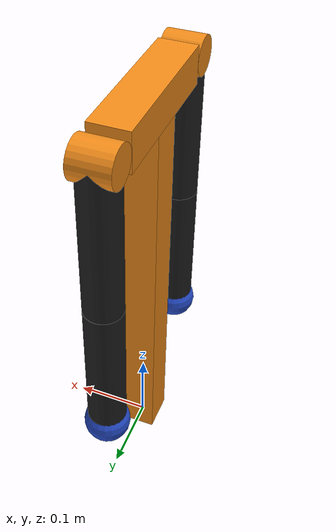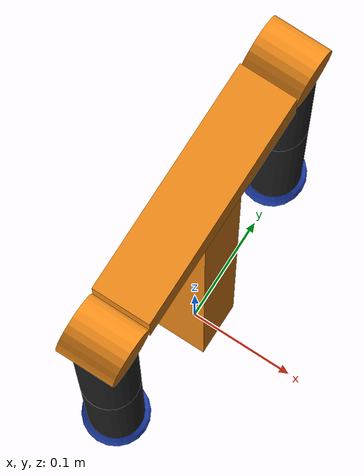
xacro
<?xml version="1.0"?>
<robot name="humanoid" xmlns:xacro="http://www.ros.org/wiki/xacro">
  <xacro:property name="PI" value="3.1415926535897931"/>
  <xacro:property name="mass" value="1" /> <!-- arbitrary value for mass -->
  <xacro:property name="width" value="0.1" /> <!-- Square dimensions (widthxwidth) of beams -->
  <xacro:property name="body_width" value="0.05" /> <!-- Square dimensions (width x width) of body_link1 -->
  <xacro:property name="body_height1" value="0.5" /> <!-- body_link1 -->
  <xacro:property name="height1" value="2" /> <!-- Link 1 -->
  <xacro:property name="height2" value="1" /> <!-- Link 2 -->
  <xacro:property name="axel_offset" value="0.05" /> <!-- Space btw top of beam and the each joint -->

  <xacro:include filename="$(find humanoid-robot)/urdf/humanoid.gazebo.xacro" />
  <xacro:include filename="$(find humanoid-robot)/urdf/materials.xacro" />

  <link name="world"/>

  <joint name="fixed" type="fixed">
    <parent link="world"/>
    <child link="body_link1"/>
  </joint>

  <!-- Base Link -->
  <link name="body_link1">
    <collision>
      <origin xyz="0 0 ${body_height1/2}" rpy="0 0 0"/>
      <geometry>
	<box size="${body_width} ${body_width} ${body_height1}"/>
      </geometry>
    </collision>

    <visual>
      <origin xyz="0 0 ${body_height1/2}" rpy="0 0 0"/>
      <geometry>
	<box size="${body_width} ${body_width} ${body_height1}"/>
      </geometry>
      <material name="orange"/>
    </visual>

    <inertial>
      <origin xyz="0 0 ${body_height1/2}" rpy="0 0 0"/>
      <mass value="${mass}"/>
      <inertia
	  ixx="${mass / 12.0 * (body_width*body_width + body_height1*body_height1)}" ixy="0.0" ixz="0.0"
	  iyy="${mass / 12.0 * (body_height1*body_height1 + body_width*body_width)}" iyz="0.0"
	  izz="${mass / 12.0 * (body_width*body_width + body_width*body_width)}"/>
    </inertial>
  </link>
  <joint name="body_joint1" type="fixed">
    <parent link="body_link1"/>
    <child link="body_link2"/>
    <origin xyz="0 0 ${body_height1 + 0.05/2.0}" rpy="0 0 0"/>
    <axis xyz="0 0 0"/>
    <dynamics damping="0.7"/>
  </joint>

  <link name="body_link2">
    <collision>
      <origin xyz="0 0 0" rpy="0 0 0"/>
      <geometry>
	<box size="0.05 0.2 0.05"/>
      </geometry>
    </collision>

    <visual>
      <origin xyz="0 0 0" rpy="0 0 0"/>
      <geometry>
	<box size="0.05 0.2 0.05"/>
      </geometry>
      <material name="orange"/>
    </visual>

    <inertial>
      <origin xyz="0 0 0" rpy="0 0 0"/>
      <mass value="${mass}"/>
      <inertia
	  ixx="${mass / 12.0 * (body_width*body_width + body_height1*body_height1)}" ixy="0.0" ixz="0.0"
	  iyy="${mass / 12.0 * (body_height1*body_height1 + body_width*body_width)}" iyz="0.0"
	  izz="${mass / 12.0 * (body_width*body_width + body_width*body_width)}"/>
    </inertial>
  </link>

  <joint name="left_shoulder_joint1" type="revolute">
    <parent link="body_link2"/>
    <child link="left_shoulder"/>
    <origin xyz="0 ${-0.1 -0.025} 0" rpy="0 ${3.141592/2} 0"/>
	<limit effort="300" velocity="3" lower="-3.14" upper="3.14"/>
    <axis xyz="0 1 0"/>
    <dynamics damping="0.7"/>
  </joint>

  <link name="left_shoulder">
    <visual>
      <origin xyz="0 0 0" rpy="0 0 0"/>
      <geometry>
        <cylinder radius="0.025" length="0.05"/>
      </geometry>
      <material name="orange"/>
    </visual>

    <inertial>
      <origin xyz="0 0 0" rpy="0 0 0"/>
      <mass value="${mass}"/>
      <inertia
	  ixx="${mass / 12.0 * (body_width*body_width + body_height1*body_height1)}" ixy="0.0" ixz="0.0"
	  iyy="${mass / 12.0 * (body_height1*body_height1 + body_width*body_width)}" iyz="0.0"
	  izz="${mass / 12.0 * (body_width*body_width + body_width*body_width)}"/>
    </inertial>
  </link>

  <joint name="left_shoulder_joint2" type="revolute">
    <parent link="left_shoulder"/>
    <child link="left_arm"/>
    <origin xyz="0 0 0" rpy="0 ${3.141592/2} 0"/>
	<limit effort="300" velocity="3" lower="-3.14" upper="3.14"/>
    <axis xyz="1 0 0"/>
    <dynamics damping="0.7"/>
  </joint>

  <link name="left_arm">
     <collision>
      <origin xyz="0 0 0.1" rpy="0 0 0"/>
      <geometry>
	    <cylinder radius="0.025" length="0.2"/>
      </geometry>
    </collision>

    <visual>
      <origin xyz="0 0 0.1" rpy="0 0 0"/>
      <geometry>
	    <cylinder radius="0.025" length="0.2"/>
      </geometry>
      <material name="black"/>
    </visual>

    <inertial>
      <origin xyz="0 0 0.1" rpy="0 0 0"/>
      <mass value="${mass}"/>
      <inertia
	  ixx="${mass / 12.0 * (body_width*body_width + body_height1*body_height1)}" ixy="0.0" ixz="0.0"
	  iyy="${mass / 12.0 * (body_height1*body_height1 + body_width*body_width)}" iyz="0.0"
	  izz="${mass / 12.0 * (body_width*body_width + body_width*body_width)}"/>
    </inertial>
  </link>

  <joint name="left_elbow_joint" type="revolute">
    <parent link="left_arm"/>
    <child link="left_forearm"/>
    <origin xyz="0 0 0.2" rpy="0 0  0"/>
	<limit effort="300" velocity="3" lower="-3.14" upper="0"/>
    <axis xyz="0 1 0"/>
    <dynamics damping="0.7"/>
  </joint>

  <link name="left_forearm">
     <collision>
      <origin xyz="0 0 0.1" rpy="0 0 0"/>
      <geometry>
	    <cylinder radius="0.025" length="0.2"/>
      </geometry>
    </collision>
    <visual>
      <origin xyz="0 0 0.1" rpy="0 0 0"/>
      <geometry>
	    <cylinder radius="0.025" length="0.2"/>
      </geometry>
      <material name="black"/>
    </visual>
    <inertial>
      <origin xyz="0 0 0.1" rpy="0 0 0"/>
      <mass value="${mass}"/>
      <inertia
	  ixx="${mass / 12.0 * (body_width*body_width + body_height1*body_height1)}" ixy="0.0" ixz="0.0"
	  iyy="${mass / 12.0 * (body_height1*body_height1 + body_width*body_width)}" iyz="0.0"
	  izz="${mass / 12.0 * (body_width*body_width + body_width*body_width)}"/>
    </inertial>
  </link>

  <joint name="left_hand_joint" type="revolute">
    <parent link="left_forearm"/>
    <child link="left_hand"/>
    <origin xyz="0 0 0.2" rpy="0 0  0"/>
  	<limit effort="300" velocity="3" lower="-3.14" upper="3.14"/>
    <axis xyz="0 0 1"/>
    <dynamics damping="0.7"/>
  </joint>

  <link name="left_hand">
     <collision>
      <origin xyz="0 0 0" rpy="0 0 0"/>
      <geometry>
    	  <sphere radius="0.03" />
      </geometry>
    </collision>
    <visual>
      <origin xyz="0 0 0" rpy="0 0 0"/>
      <geometry>
          <sphere radius="0.03" />
      </geometry>
      <material name="blue"/>
    </visual>
    <inertial>
      <origin xyz="0 0 0" rpy="0 0 0"/>
      <mass value="${mass}"/>
      <inertia
	  ixx="${mass / 12.0 * (body_width*body_width + body_height1*body_height1)}" ixy="0.0" ixz="0.0"
	  iyy="${mass / 12.0 * (body_height1*body_height1 + body_width*body_width)}" iyz="0.0"
	  izz="${mass / 12.0 * (body_width*body_width + body_width*body_width)}"/>
    </inertial>
  </link>

  <!--- Right Arm -->
  <joint name="right_shoulder_joint1" type="revolute">
    <parent link="body_link2"/>
    <child link="right_shoulder"/>
    <origin xyz="0 ${0.1 + 0.025} 0" rpy="0 ${3.141592/2} 0"/>
	<limit effort="300" velocity="3" lower="-3.14" upper="3.14"/>
    <axis xyz="0 1 0"/>
    <dynamics damping="0.7"/>
  </joint>

  <link name="right_shoulder">
    <visual>
      <origin xyz="0 0 0" rpy="0 0 0"/>
      <geometry>
        <cylinder radius="0.025" length="0.05"/>
      </geometry>
      <material name="orange"/>
    </visual>

    <inertial>
      <origin xyz="0 0 0" rpy="0 0 0"/>
      <mass value="${mass}"/>
      <inertia
	  ixx="${mass / 12.0 * (body_width*body_width + body_height1*body_height1)}" ixy="0.0" ixz="0.0"
	  iyy="${mass / 12.0 * (body_height1*body_height1 + body_width*body_width)}" iyz="0.0"
	  izz="${mass / 12.0 * (body_width*body_width + body_width*body_width)}"/>
    </inertial>
  </link>

  <joint name="right_shoulder_joint2" type="revolute">
    <parent link="right_shoulder"/>
    <child link="right_arm"/>
    <origin xyz="0 0 0" rpy="0 ${3.141592/2} 0"/>
	<limit effort="300" velocity="3" lower="-3.14" upper="3.14"/>
    <axis xyz="1 0 0"/>
    <dynamics damping="0.7"/>
  </joint>

  <link name="right_arm">
     <collision>
      <origin xyz="0 0 0.1" rpy="0 0 0"/>
      <geometry>
	    <cylinder radius="0.025" length="0.2"/>
      </geometry>
    </collision>

    <visual>
      <origin xyz="0 0 0.1" rpy="0 0 0"/>
      <geometry>
	    <cylinder radius="0.025" length="0.2"/>
      </geometry>
      <material name="black"/>
    </visual>

    <inertial>
      <origin xyz="0 0 ${body_height1/2}" rpy="0 0 0"/>
      <mass value="${mass}"/>
      <inertia
	  ixx="${mass / 12.0 * (body_width*body_width + body_height1*body_height1)}" ixy="0.0" ixz="0.0"
	  iyy="${mass / 12.0 * (body_height1*body_height1 + body_width*body_width)}" iyz="0.0"
	  izz="${mass / 12.0 * (body_width*body_width + body_width*body_width)}"/>
    </inertial>
  </link>

  <joint name="right_elbow_joint" type="revolute">
    <parent link="right_arm"/>
    <child link="right_forearm"/>
    <origin xyz="0 0 0.2" rpy="0 0  0"/>
	<limit effort="300" velocity="3" lower="-3.14" upper="0"/>
    <axis xyz="0 1 0"/>
    <dynamics damping="0.7"/>
  </joint>

  <link name="right_forearm">
     <collision>
      <origin xyz="0 0 0.1" rpy="0 0 0"/>
      <geometry>
	    <cylinder radius="0.025" length="0.2"/>
      </geometry>
    </collision>
    <visual>
      <origin xyz="0 0 0.1" rpy="0 0 0"/>
      <geometry>
	    <cylinder radius="0.025" length="0.2"/>
      </geometry>
      <material name="black"/>
    </visual>
    <inertial>
      <origin xyz="0 0 0.1" rpy="0 0 0"/>
      <mass value="${mass}"/>
      <inertia
	  ixx="${mass / 12.0 * (body_width*body_width + body_height1*body_height1)}" ixy="0.0" ixz="0.0"
	  iyy="${mass / 12.0 * (body_height1*body_height1 + body_width*body_width)}" iyz="0.0"
	  izz="${mass / 12.0 * (body_width*body_width + body_width*body_width)}"/>
    </inertial>
  </link>

  <joint name="right_hand_joint" type="revolute">
    <parent link="right_forearm"/>
    <child link="right_hand"/>
    <origin xyz="0 0 0.2" rpy="0 0  0"/>
  	<limit effort="300" velocity="3" lower="-3.14" upper="3.14"/>
    <axis xyz="0 0 1"/>
    <dynamics damping="0.7"/>
  </joint>

  <link name="right_hand">
     <collision>
      <origin xyz="0 0 0" rpy="0 0 0"/>
      <geometry>
    	  <sphere radius="0.03" />
      </geometry>
    </collision>
    <visual>
      <origin xyz="0 0 0" rpy="0 0 0"/>
      <geometry>
          <sphere radius="0.03" />
      </geometry>
      <material name="blue"/>
    </visual>
    <inertial>
      <origin xyz="0 0 0" rpy="0 0 0"/>
      <mass value="${mass}"/>
      <inertia
	  ixx="${mass / 12.0 * (body_width*body_width + body_height1*body_height1)}" ixy="0.0" ixz="0.0"
	  iyy="${mass / 12.0 * (body_height1*body_height1 + body_width*body_width)}" iyz="0.0"
	  izz="${mass / 12.0 * (body_width*body_width + body_width*body_width)}"/>
    </inertial>
  </link>

  <!--transmissions-->
  <!--left-->

  <transmission name="ltran1">
      <type>transmission_interface/SimpleTransmission</type>
	  <joint name="left_shoulder_joint1">
	      <hardwareInterface>hardware_interface/PositionJointInterface</hardwareInterface>
      </joint>
	  <actuator name="left_motor1">
	      <hardwareInterface>hardware_interface/PositionJointInterface</hardwareInterface>
          <mechanicalReduction>1</mechanicalReduction>
      </actuator>
  </transmission>

  <transmission name="ltran2">
	  <type>transmission_interface/SimpleTransmission</type>
	  <joint name="left_shoulder_joint2">
          <hardwareInterface>hardware_interface/PositionJointInterface</hardwareInterface>
      </joint>
	  <actuator name="left_motor2">
	      <hardwareInterface>hardware_interface/PositionJointInterface</hardwareInterface>
          <mechanicalReduction>1</mechanicalReduction>
      </actuator>
  </transmission>

  <transmission name="ltran3">
      <type>transmission_interface/SimpleTransmission</type>
	  <joint name="left_elbow_joint">
          <hardwareInterface>hardware_interface/PositionJointInterface</hardwareInterface>
      </joint>
	  <actuator name="left_motor3">
	      <hardwareInterface>hardware_interface/PositionJointInterface</hardwareInterface>
          <mechanicalReduction>1</mechanicalReduction>
      </actuator>
  </transmission>

  <transmission name="ltran4">
      <type>transmission_interface/SimpleTransmission</type>
	  <joint name="left_hand_joint">
	      <hardwareInterface>hardware_interface/PositionJointInterface</hardwareInterface>
      </joint>
	  <actuator name="left_motor4">
	      <hardwareInterface>hardware_interface/PositionJointInterface</hardwareInterface>
          <mechanicalReduction>1</mechanicalReduction>
      </actuator>
  </transmission>

  <transmission name="rtran1">
      <type>transmission_interface/SimpleTransmission</type>
	  <joint name="right_shoulder_joint1">
	      <hardwareInterface>hardware_interface/PositionJointInterface</hardwareInterface>
      </joint>
	  <actuator name="right_motor1">
	      <hardwareInterface>hardware_interface/PositionJointInterface</hardwareInterface>
          <mechanicalReduction>1</mechanicalReduction>
      </actuator>
  </transmission>

  <transmission name="rtran2">
	  <type>transmission_interface/SimpleTransmission</type>
	      <joint name="right_shoulder_joint2">
      <hardwareInterface>hardware_interface/PositionJointInterface</hardwareInterface>
      </joint>
	  <actuator name="right_motor2">
	      <hardwareInterface>hardware_interface/PositionJointInterface</hardwareInterface>
          <mechanicalReduction>1</mechanicalReduction>
      </actuator>
  </transmission>

  <transmission name="rtran3">
      <type>transmission_interface/SimpleTransmission</type>
	  <joint name="right_elbow_joint">
          <hardwareInterface>hardware_interface/PositionJointInterface</hardwareInterface>
      </joint>
	  <actuator name="right_motor3">
	      <hardwareInterface>hardware_interface/PositionJointInterface</hardwareInterface>
          <mechanicalReduction>1</mechanicalReduction>
      </actuator>
  </transmission>

  <transmission name="rtran4">
      <type>transmission_interface/SimpleTransmission</type>
	  <joint name="right_hand_joint">
	      <hardwareInterface>hardware_interface/PositionJointInterface</hardwareInterface>
      </joint>
	  <actuator name="right_motor4">
	      <hardwareInterface>hardware_interface/PositionJointInterface</hardwareInterface>
          <mechanicalReduction>1</mechanicalReduction>
      </actuator>
  </transmission>

</robot>
